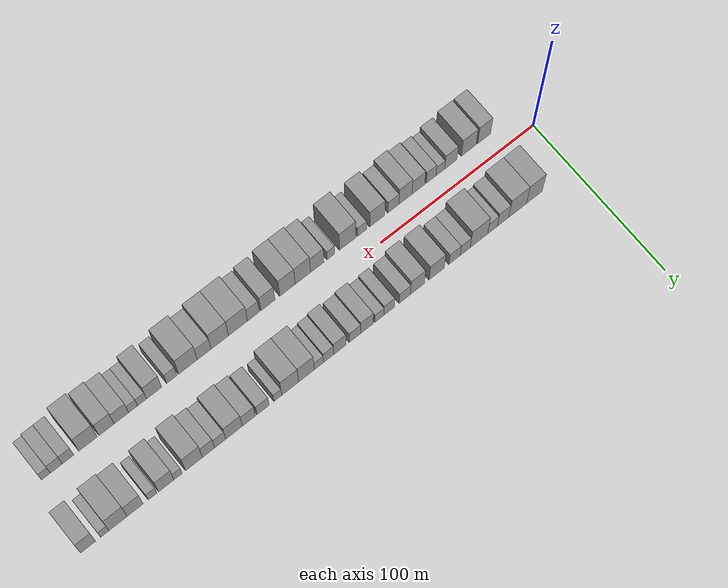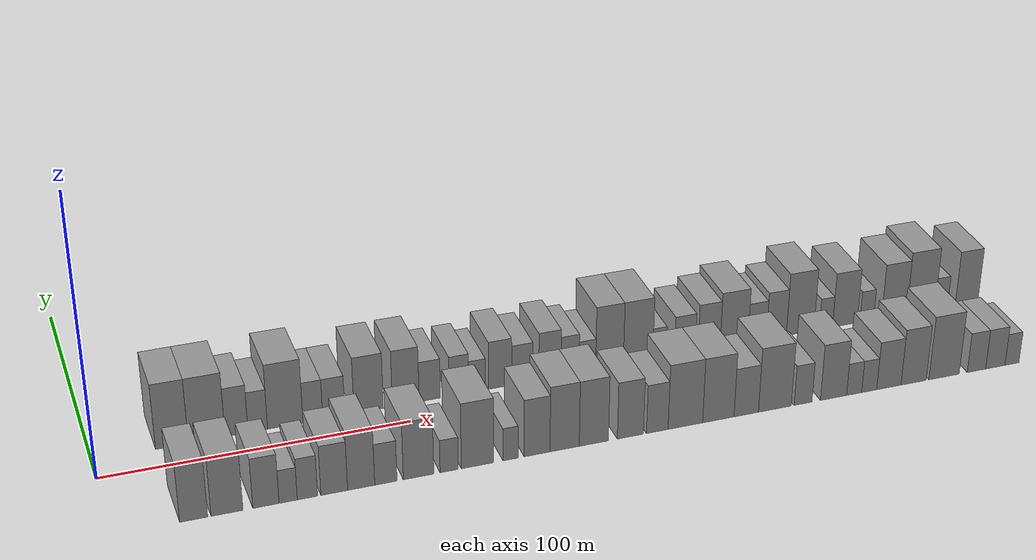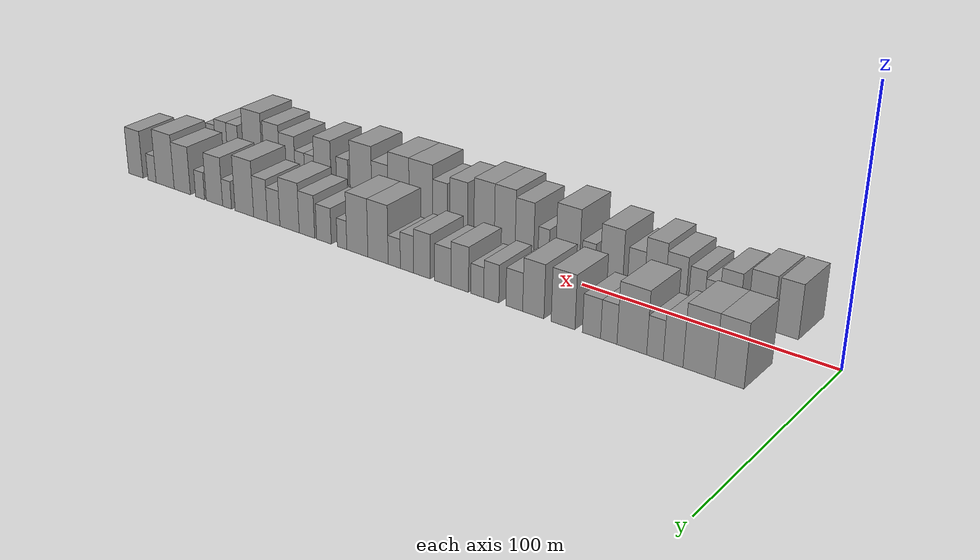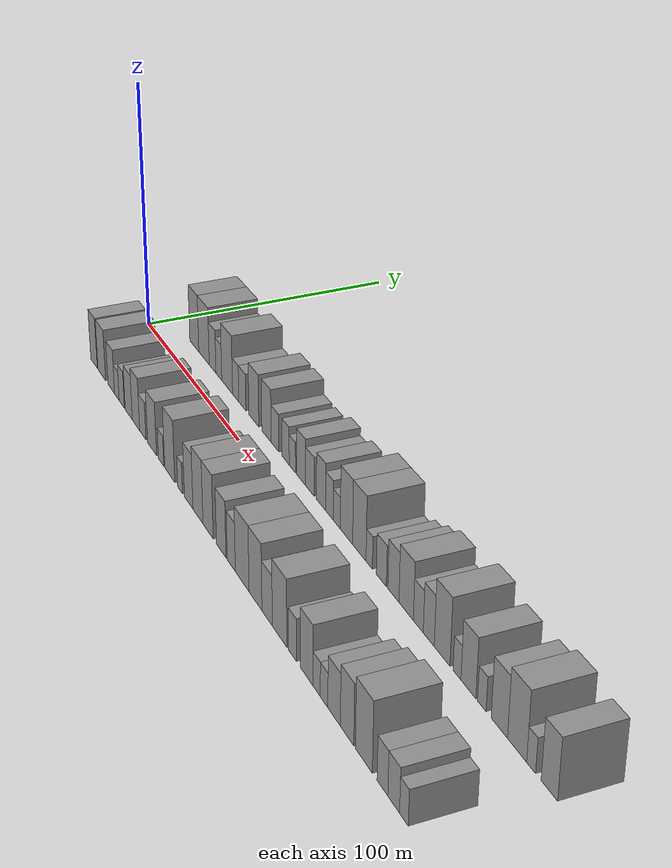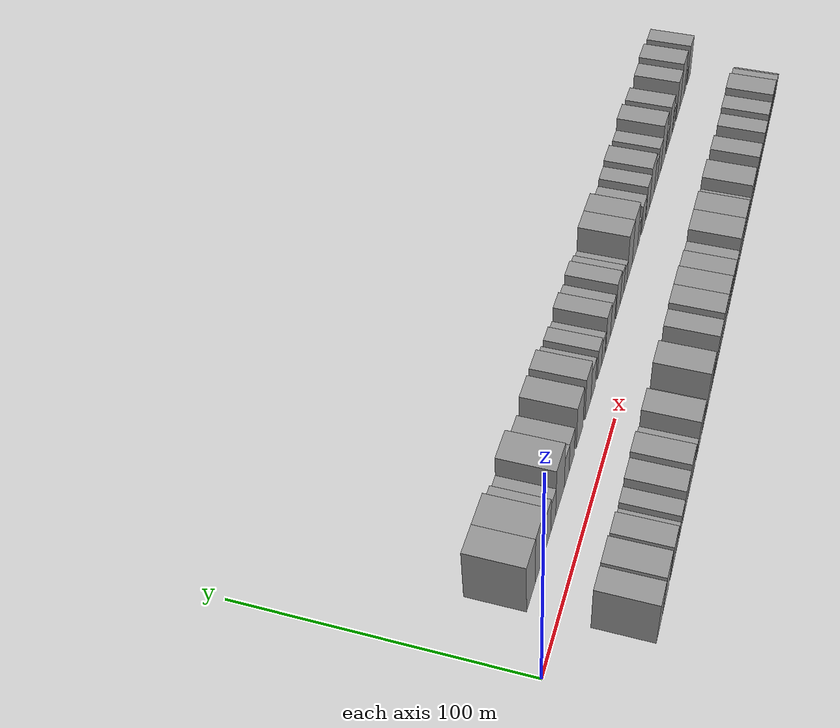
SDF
<sdf version="1.6">
 <world name="default">
  <scene>
   <sky><clouds><speed>12</speed></clouds></sky>
   <ambient>0.4 0.4 0.4 1</ambient>
   <background>0.7 0.7 0.7 1</background>
   <shadows>1</shadows>
  </scene>
  <gravity>0 0 -9.8066</gravity>
  <magnetic_field>6e-06 2.3e-05 -4.2e-05</magnetic_field>
  <physics default="0" name="default_physics" type="ode">
   <ode>
    <solver>
     <type>quick</type>
     <iters>10</iters>
     <sor>1.0</sor>
     <use_dynamic_moi_rescaling>0</use_dynamic_moi_rescaling>
    </solver>
    <constraints>
     <cfm>0</cfm>
     <erp>0.2</erp>
     <contact_max_correcting_vel>100</contact_max_correcting_vel>
     <contact_surface_layer>0.001</contact_surface_layer>
    </constraints>
   </ode>
   <max_step_size>0.004</max_step_size>
   <real_time_factor>1</real_time_factor>
   <real_time_update_rate>250</real_time_update_rate>
  </physics>
  <light name="sun" type="directional">
   <pose>0 0 10 0 0 0</pose>
   <diffuse>0.8 0.8 0.8 1</diffuse>
   <specular>0.2 0.2 0.2 1</specular>
   <attenuation>
    <range>1000</range>
    <constant>0.9</constant>
    <linear>0.01</linear>
    <quadratic>0.001</quadratic>
   </attenuation>
   <direction>-0.5 0.1 -0.9</direction>
  </light>
  <model name="building_1">
   <static>1</static>
   <pose>25.1903 20.0000 0 0.000000 0.000000 1.570796</pose>
   <link name="link">
    <pose>0 0 12.00 0 0 0</pose>
    <collision name="collision"><geometry><box><size>20.0000 10.3805 24.0000</size></box></geometry></collision>
    <visual name="visual">
     <cast_shadows>0</cast_shadows>
     <geometry><box><size>20.0000 10.3805 24.0000</size></box></geometry>
     <material>
      <script>
       <uri>model://grey_wall/materials/scripts</uri>
       <uri>model://grey_wall/materials/textures</uri>
       <name>vrc/grey_wall</name>
      </script>
     </material>
    </visual>
   </link>
  </model>
  <model name="building_2">
   <static>1</static>
   <pose>36.2420 20.0000 0 0.000000 0.000000 1.570796</pose>
   <link name="link">
    <pose>0 0 12.00 0 0 0</pose>
    <collision name="collision"><geometry><box><size>20.0000 11.7230 24.0000</size></box></geometry></collision>
    <visual name="visual">
     <cast_shadows>0</cast_shadows>
     <geometry><box><size>20.0000 11.7230 24.0000</size></box></geometry>
     <material>
      <script>
       <uri>model://grey_wall/materials/scripts</uri>
       <uri>model://grey_wall/materials/textures</uri>
       <name>vrc/grey_wall</name>
      </script>
     </material>
    </visual>
   </link>
  </model>
  <model name="building_3">
   <static>1</static>
   <pose>45.7903 20.0000 0 0.000000 0.000000 1.570796</pose>
   <link name="link">
    <pose>0 0 9.00 0 0 0</pose>
    <collision name="collision"><geometry><box><size>20.0000 7.3734 18.0000</size></box></geometry></collision>
    <visual name="visual">
     <cast_shadows>0</cast_shadows>
     <geometry><box><size>20.0000 7.3734 18.0000</size></box></geometry>
     <material>
      <script>
       <uri>model://grey_wall/materials/scripts</uri>
       <uri>model://grey_wall/materials/textures</uri>
       <name>vrc/grey_wall</name>
      </script>
     </material>
    </visual>
   </link>
  </model>
  <model name="building_4">
   <static>1</static>
   <pose>52.6299 20.0000 0 0.000000 0.000000 1.570796</pose>
   <link name="link">
    <pose>0 0 7.50 0 0 0</pose>
    <collision name="collision"><geometry><box><size>20.0000 6.3058 15.0000</size></box></geometry></collision>
    <visual name="visual">
     <cast_shadows>0</cast_shadows>
     <geometry><box><size>20.0000 6.3058 15.0000</size></box></geometry>
     <material>
      <script>
       <uri>model://grey_wall/materials/scripts</uri>
       <uri>model://grey_wall/materials/textures</uri>
       <name>vrc/grey_wall</name>
      </script>
     </material>
    </visual>
   </link>
  </model>
  <model name="building_5">
   <static>1</static>
   <pose>61.5337 20.0000 0 0.000000 0.000000 1.570796</pose>
   <link name="link">
    <pose>0 0 12.00 0 0 0</pose>
    <collision name="collision"><geometry><box><size>20.0000 11.5018 24.0000</size></box></geometry></collision>
    <visual name="visual">
     <cast_shadows>0</cast_shadows>
     <geometry><box><size>20.0000 11.5018 24.0000</size></box></geometry>
     <material>
      <script>
       <uri>model://grey_wall/materials/scripts</uri>
       <uri>model://grey_wall/materials/textures</uri>
       <name>vrc/grey_wall</name>
      </script>
     </material>
    </visual>
   </link>
  </model>
  <model name="building_6">
   <static>1</static>
   <pose>70.5123 20.0000 0 0.000000 0.000000 1.570796</pose>
   <link name="link">
    <pose>0 0 7.50 0 0 0</pose>
    <collision name="collision"><geometry><box><size>20.0000 6.4554 15.0000</size></box></geometry></collision>
    <visual name="visual">
     <cast_shadows>0</cast_shadows>
     <geometry><box><size>20.0000 6.4554 15.0000</size></box></geometry>
     <material>
      <script>
       <uri>model://grey_wall/materials/scripts</uri>
       <uri>model://grey_wall/materials/textures</uri>
       <name>vrc/grey_wall</name>
      </script>
     </material>
    </visual>
   </link>
  </model>
  <model name="building_7">
   <static>1</static>
   <pose>77.3786 20.0000 0 0.000000 0.000000 1.570796</pose>
   <link name="link">
    <pose>0 0 7.50 0 0 0</pose>
    <collision name="collision"><geometry><box><size>20.0000 7.2771 15.0000</size></box></geometry></collision>
    <visual name="visual">
     <cast_shadows>0</cast_shadows>
     <geometry><box><size>20.0000 7.2771 15.0000</size></box></geometry>
     <material>
      <script>
       <uri>model://grey_wall/materials/scripts</uri>
       <uri>model://grey_wall/materials/textures</uri>
       <name>vrc/grey_wall</name>
      </script>
     </material>
    </visual>
   </link>
  </model>
  <model name="building_8">
   <static>1</static>
   <pose>88.9025 20.0000 0 0.000000 0.000000 1.570796</pose>
   <link name="link">
    <pose>0 0 10.50 0 0 0</pose>
    <collision name="collision"><geometry><box><size>20.0000 9.7707 21.0000</size></box></geometry></collision>
    <visual name="visual">
     <cast_shadows>0</cast_shadows>
     <geometry><box><size>20.0000 9.7707 21.0000</size></box></geometry>
     <material>
      <script>
       <uri>model://grey_wall/materials/scripts</uri>
       <uri>model://grey_wall/materials/textures</uri>
       <name>vrc/grey_wall</name>
      </script>
     </material>
    </visual>
   </link>
  </model>
  <model name="building_9">
   <static>1</static>
   <pose>101.2735 20.0000 0 0.000000 0.000000 1.570796</pose>
   <link name="link">
    <pose>0 0 10.50 0 0 0</pose>
    <collision name="collision"><geometry><box><size>20.0000 8.9713 21.0000</size></box></geometry></collision>
    <visual name="visual">
     <cast_shadows>0</cast_shadows>
     <geometry><box><size>20.0000 8.9713 21.0000</size></box></geometry>
     <material>
      <script>
       <uri>model://grey_wall/materials/scripts</uri>
       <uri>model://grey_wall/materials/textures</uri>
       <name>vrc/grey_wall</name>
      </script>
     </material>
    </visual>
   </link>
  </model>
  <model name="building_10">
   <static>1</static>
   <pose>109.3576 20.0000 0 0.000000 0.000000 1.570796</pose>
   <link name="link">
    <pose>0 0 7.50 0 0 0</pose>
    <collision name="collision"><geometry><box><size>20.0000 7.1968 15.0000</size></box></geometry></collision>
    <visual name="visual">
     <cast_shadows>0</cast_shadows>
     <geometry><box><size>20.0000 7.1968 15.0000</size></box></geometry>
     <material>
      <script>
       <uri>model://grey_wall/materials/scripts</uri>
       <uri>model://grey_wall/materials/textures</uri>
       <name>vrc/grey_wall</name>
      </script>
     </material>
    </visual>
   </link>
  </model>
  <model name="building_11">
   <static>1</static>
   <pose>119.2578 20.0000 0 0.000000 0.000000 1.570796</pose>
   <link name="link">
    <pose>0 0 7.50 0 0 0</pose>
    <collision name="collision"><geometry><box><size>20.0000 6.6038 15.0000</size></box></geometry></collision>
    <visual name="visual">
     <cast_shadows>0</cast_shadows>
     <geometry><box><size>20.0000 6.6038 15.0000</size></box></geometry>
     <material>
      <script>
       <uri>model://grey_wall/materials/scripts</uri>
       <uri>model://grey_wall/materials/textures</uri>
       <name>vrc/grey_wall</name>
      </script>
     </material>
    </visual>
   </link>
  </model>
  <model name="building_12">
   <static>1</static>
   <pose>125.4372 20.0000 0 0.000000 0.000000 1.570796</pose>
   <link name="link">
    <pose>0 0 6.00 0 0 0</pose>
    <collision name="collision"><geometry><box><size>20.0000 5.7549 12.0000</size></box></geometry></collision>
    <visual name="visual">
     <cast_shadows>0</cast_shadows>
     <geometry><box><size>20.0000 5.7549 12.0000</size></box></geometry>
     <material>
      <script>
       <uri>model://grey_wall/materials/scripts</uri>
       <uri>model://grey_wall/materials/textures</uri>
       <name>vrc/grey_wall</name>
      </script>
     </material>
    </visual>
   </link>
  </model>
  <model name="building_13">
   <static>1</static>
   <pose>133.2861 20.0000 0 0.000000 0.000000 1.570796</pose>
   <link name="link">
    <pose>0 0 9.00 0 0 0</pose>
    <collision name="collision"><geometry><box><size>20.0000 7.9430 18.0000</size></box></geometry></collision>
    <visual name="visual">
     <cast_shadows>0</cast_shadows>
     <geometry><box><size>20.0000 7.9430 18.0000</size></box></geometry>
     <material>
      <script>
       <uri>model://grey_wall/materials/scripts</uri>
       <uri>model://grey_wall/materials/textures</uri>
       <name>vrc/grey_wall</name>
      </script>
     </material>
    </visual>
   </link>
  </model>
  <model name="building_14">
   <static>1</static>
   <pose>140.9305 20.0000 0 0.000000 0.000000 1.570796</pose>
   <link name="link">
    <pose>0 0 7.50 0 0 0</pose>
    <collision name="collision"><geometry><box><size>20.0000 7.3458 15.0000</size></box></geometry></collision>
    <visual name="visual">
     <cast_shadows>0</cast_shadows>
     <geometry><box><size>20.0000 7.3458 15.0000</size></box></geometry>
     <material>
      <script>
       <uri>model://grey_wall/materials/scripts</uri>
       <uri>model://grey_wall/materials/textures</uri>
       <name>vrc/grey_wall</name>
      </script>
     </material>
    </visual>
   </link>
  </model>
  <model name="building_15">
   <static>1</static>
   <pose>150.4862 20.0000 0 0.000000 0.000000 1.570796</pose>
   <link name="link">
    <pose>0 0 9.00 0 0 0</pose>
    <collision name="collision"><geometry><box><size>20.0000 7.7655 18.0000</size></box></geometry></collision>
    <visual name="visual">
     <cast_shadows>0</cast_shadows>
     <geometry><box><size>20.0000 7.7655 18.0000</size></box></geometry>
     <material>
      <script>
       <uri>model://grey_wall/materials/scripts</uri>
       <uri>model://grey_wall/materials/textures</uri>
       <name>vrc/grey_wall</name>
      </script>
     </material>
    </visual>
   </link>
  </model>
  <model name="building_16">
   <static>1</static>
   <pose>157.5032 20.0000 0 0.000000 0.000000 1.570796</pose>
   <link name="link">
    <pose>0 0 7.50 0 0 0</pose>
    <collision name="collision"><geometry><box><size>20.0000 6.2685 15.0000</size></box></geometry></collision>
    <visual name="visual">
     <cast_shadows>0</cast_shadows>
     <geometry><box><size>20.0000 6.2685 15.0000</size></box></geometry>
     <material>
      <script>
       <uri>model://grey_wall/materials/scripts</uri>
       <uri>model://grey_wall/materials/textures</uri>
       <name>vrc/grey_wall</name>
      </script>
     </material>
    </visual>
   </link>
  </model>
  <model name="building_17">
   <static>1</static>
   <pose>163.5478 20.0000 0 0.000000 0.000000 1.570796</pose>
   <link name="link">
    <pose>0 0 6.00 0 0 0</pose>
    <collision name="collision"><geometry><box><size>20.0000 5.8207 12.0000</size></box></geometry></collision>
    <visual name="visual">
     <cast_shadows>0</cast_shadows>
     <geometry><box><size>20.0000 5.8207 12.0000</size></box></geometry>
     <material>
      <script>
       <uri>model://grey_wall/materials/scripts</uri>
       <uri>model://grey_wall/materials/textures</uri>
       <name>vrc/grey_wall</name>
      </script>
     </material>
    </visual>
   </link>
  </model>
  <model name="building_18">
   <static>1</static>
   <pose>171.3626 20.0000 0 0.000000 0.000000 1.570796</pose>
   <link name="link">
    <pose>0 0 12.00 0 0 0</pose>
    <collision name="collision"><geometry><box><size>20.0000 9.8091 24.0000</size></box></geometry></collision>
    <visual name="visual">
     <cast_shadows>0</cast_shadows>
     <geometry><box><size>20.0000 9.8091 24.0000</size></box></geometry>
     <material>
      <script>
       <uri>model://grey_wall/materials/scripts</uri>
       <uri>model://grey_wall/materials/textures</uri>
       <name>vrc/grey_wall</name>
      </script>
     </material>
    </visual>
   </link>
  </model>
  <model name="building_19">
   <static>1</static>
   <pose>181.4754 20.0000 0 0.000000 0.000000 1.570796</pose>
   <link name="link">
    <pose>0 0 12.00 0 0 0</pose>
    <collision name="collision"><geometry><box><size>20.0000 10.4164 24.0000</size></box></geometry></collision>
    <visual name="visual">
     <cast_shadows>0</cast_shadows>
     <geometry><box><size>20.0000 10.4164 24.0000</size></box></geometry>
     <material>
      <script>
       <uri>model://grey_wall/materials/scripts</uri>
       <uri>model://grey_wall/materials/textures</uri>
       <name>vrc/grey_wall</name>
      </script>
     </material>
    </visual>
   </link>
  </model>
  <model name="building_20">
   <static>1</static>
   <pose>189.0903 20.0000 0 0.000000 0.000000 1.570796</pose>
   <link name="link">
    <pose>0 0 6.00 0 0 0</pose>
    <collision name="collision"><geometry><box><size>20.0000 4.8135 12.0000</size></box></geometry></collision>
    <visual name="visual">
     <cast_shadows>0</cast_shadows>
     <geometry><box><size>20.0000 4.8135 12.0000</size></box></geometry>
     <material>
      <script>
       <uri>model://grey_wall/materials/scripts</uri>
       <uri>model://grey_wall/materials/textures</uri>
       <name>vrc/grey_wall</name>
      </script>
     </material>
    </visual>
   </link>
  </model>
  <model name="building_21">
   <static>1</static>
   <pose>198.2277 20.0000 0 0.000000 0.000000 1.570796</pose>
   <link name="link">
    <pose>0 0 7.50 0 0 0</pose>
    <collision name="collision"><geometry><box><size>20.0000 7.4613 15.0000</size></box></geometry></collision>
    <visual name="visual">
     <cast_shadows>0</cast_shadows>
     <geometry><box><size>20.0000 7.4613 15.0000</size></box></geometry>
     <material>
      <script>
       <uri>model://grey_wall/materials/scripts</uri>
       <uri>model://grey_wall/materials/textures</uri>
       <name>vrc/grey_wall</name>
      </script>
     </material>
    </visual>
   </link>
  </model>
  <model name="building_22">
   <static>1</static>
   <pose>206.9759 20.0000 0 0.000000 0.000000 1.570796</pose>
   <link name="link">
    <pose>0 0 9.00 0 0 0</pose>
    <collision name="collision"><geometry><box><size>20.0000 8.0350 18.0000</size></box></geometry></collision>
    <visual name="visual">
     <cast_shadows>0</cast_shadows>
     <geometry><box><size>20.0000 8.0350 18.0000</size></box></geometry>
     <material>
      <script>
       <uri>model://grey_wall/materials/scripts</uri>
       <uri>model://grey_wall/materials/textures</uri>
       <name>vrc/grey_wall</name>
      </script>
     </material>
    </visual>
   </link>
  </model>
  <model name="building_23">
   <static>1</static>
   <pose>216.0809 20.0000 0 0.000000 0.000000 1.570796</pose>
   <link name="link">
    <pose>0 0 10.50 0 0 0</pose>
    <collision name="collision"><geometry><box><size>20.0000 10.1751 21.0000</size></box></geometry></collision>
    <visual name="visual">
     <cast_shadows>0</cast_shadows>
     <geometry><box><size>20.0000 10.1751 21.0000</size></box></geometry>
     <material>
      <script>
       <uri>model://grey_wall/materials/scripts</uri>
       <uri>model://grey_wall/materials/textures</uri>
       <name>vrc/grey_wall</name>
      </script>
     </material>
    </visual>
   </link>
  </model>
  <model name="building_24">
   <static>1</static>
   <pose>224.5500 20.0000 0 0.000000 0.000000 1.570796</pose>
   <link name="link">
    <pose>0 0 7.50 0 0 0</pose>
    <collision name="collision"><geometry><box><size>20.0000 6.7630 15.0000</size></box></geometry></collision>
    <visual name="visual">
     <cast_shadows>0</cast_shadows>
     <geometry><box><size>20.0000 6.7630 15.0000</size></box></geometry>
     <material>
      <script>
       <uri>model://grey_wall/materials/scripts</uri>
       <uri>model://grey_wall/materials/textures</uri>
       <name>vrc/grey_wall</name>
      </script>
     </material>
    </visual>
   </link>
  </model>
  <model name="building_25">
   <static>1</static>
   <pose>231.6264 20.0000 0 0.000000 0.000000 1.570796</pose>
   <link name="link">
    <pose>0 0 9.00 0 0 0</pose>
    <collision name="collision"><geometry><box><size>20.0000 7.3898 18.0000</size></box></geometry></collision>
    <visual name="visual">
     <cast_shadows>0</cast_shadows>
     <geometry><box><size>20.0000 7.3898 18.0000</size></box></geometry>
     <material>
      <script>
       <uri>model://grey_wall/materials/scripts</uri>
       <uri>model://grey_wall/materials/textures</uri>
       <name>vrc/grey_wall</name>
      </script>
     </material>
    </visual>
   </link>
  </model>
  <model name="building_26">
   <static>1</static>
   <pose>240.4442 20.0000 0 0.000000 0.000000 1.570796</pose>
   <link name="link">
    <pose>0 0 12.00 0 0 0</pose>
    <collision name="collision"><geometry><box><size>20.0000 10.2458 24.0000</size></box></geometry></collision>
    <visual name="visual">
     <cast_shadows>0</cast_shadows>
     <geometry><box><size>20.0000 10.2458 24.0000</size></box></geometry>
     <material>
      <script>
       <uri>model://grey_wall/materials/scripts</uri>
       <uri>model://grey_wall/materials/textures</uri>
       <name>vrc/grey_wall</name>
      </script>
     </material>
    </visual>
   </link>
  </model>
  <model name="building_27">
   <static>1</static>
   <pose>250.0642 20.0000 0 0.000000 0.000000 1.570796</pose>
   <link name="link">
    <pose>0 0 6.00 0 0 0</pose>
    <collision name="collision"><geometry><box><size>20.0000 4.9942 12.0000</size></box></geometry></collision>
    <visual name="visual">
     <cast_shadows>0</cast_shadows>
     <geometry><box><size>20.0000 4.9942 12.0000</size></box></geometry>
     <material>
      <script>
       <uri>model://grey_wall/materials/scripts</uri>
       <uri>model://grey_wall/materials/textures</uri>
       <name>vrc/grey_wall</name>
      </script>
     </material>
    </visual>
   </link>
  </model>
  <model name="building_28">
   <static>1</static>
   <pose>257.1927 20.0000 0 0.000000 0.000000 1.570796</pose>
   <link name="link">
    <pose>0 0 10.50 0 0 0</pose>
    <collision name="collision"><geometry><box><size>20.0000 9.2628 21.0000</size></box></geometry></collision>
    <visual name="visual">
     <cast_shadows>0</cast_shadows>
     <geometry><box><size>20.0000 9.2628 21.0000</size></box></geometry>
     <material>
      <script>
       <uri>model://grey_wall/materials/scripts</uri>
       <uri>model://grey_wall/materials/textures</uri>
       <name>vrc/grey_wall</name>
      </script>
     </material>
    </visual>
   </link>
  </model>
  <model name="building_29">
   <static>1</static>
   <pose>265.4251 20.0000 0 0.000000 0.000000 1.570796</pose>
   <link name="link">
    <pose>0 0 6.00 0 0 0</pose>
    <collision name="collision"><geometry><box><size>20.0000 5.2021 12.0000</size></box></geometry></collision>
    <visual name="visual">
     <cast_shadows>0</cast_shadows>
     <geometry><box><size>20.0000 5.2021 12.0000</size></box></geometry>
     <material>
      <script>
       <uri>model://grey_wall/materials/scripts</uri>
       <uri>model://grey_wall/materials/textures</uri>
       <name>vrc/grey_wall</name>
      </script>
     </material>
    </visual>
   </link>
  </model>
  <model name="building_30">
   <static>1</static>
   <pose>275.7884 20.0000 0 0.000000 0.000000 1.570796</pose>
   <link name="link">
    <pose>0 0 10.50 0 0 0</pose>
    <collision name="collision"><geometry><box><size>20.0000 9.5245 21.0000</size></box></geometry></collision>
    <visual name="visual">
     <cast_shadows>0</cast_shadows>
     <geometry><box><size>20.0000 9.5245 21.0000</size></box></geometry>
     <material>
      <script>
       <uri>model://grey_wall/materials/scripts</uri>
       <uri>model://grey_wall/materials/textures</uri>
       <name>vrc/grey_wall</name>
      </script>
     </material>
    </visual>
   </link>
  </model>
  <model name="building_31">
   <static>1</static>
   <pose>285.9684 20.0000 0 0.000000 0.000000 1.570796</pose>
   <link name="link">
    <pose>0 0 12.00 0 0 0</pose>
    <collision name="collision"><geometry><box><size>20.0000 10.8355 24.0000</size></box></geometry></collision>
    <visual name="visual">
     <cast_shadows>0</cast_shadows>
     <geometry><box><size>20.0000 10.8355 24.0000</size></box></geometry>
     <material>
      <script>
       <uri>model://grey_wall/materials/scripts</uri>
       <uri>model://grey_wall/materials/textures</uri>
       <name>vrc/grey_wall</name>
      </script>
     </material>
    </visual>
   </link>
  </model>
  <model name="building_32">
   <static>1</static>
   <pose>293.8585 20.0000 0 0.000000 0.000000 1.570796</pose>
   <link name="link">
    <pose>0 0 6.00 0 0 0</pose>
    <collision name="collision"><geometry><box><size>20.0000 4.9446 12.0000</size></box></geometry></collision>
    <visual name="visual">
     <cast_shadows>0</cast_shadows>
     <geometry><box><size>20.0000 4.9446 12.0000</size></box></geometry>
     <material>
      <script>
       <uri>model://grey_wall/materials/scripts</uri>
       <uri>model://grey_wall/materials/textures</uri>
       <name>vrc/grey_wall</name>
      </script>
     </material>
    </visual>
   </link>
  </model>
  <model name="building_33">
   <static>1</static>
   <pose>303.7299 20.0000 0 0.000000 0.000000 1.570796</pose>
   <link name="link">
    <pose>0 0 10.50 0 0 0</pose>
    <collision name="collision"><geometry><box><size>20.0000 8.7983 21.0000</size></box></geometry></collision>
    <visual name="visual">
     <cast_shadows>0</cast_shadows>
     <geometry><box><size>20.0000 8.7983 21.0000</size></box></geometry>
     <material>
      <script>
       <uri>model://grey_wall/materials/scripts</uri>
       <uri>model://grey_wall/materials/textures</uri>
       <name>vrc/grey_wall</name>
      </script>
     </material>
    </visual>
   </link>
  </model>
  <model name="building_34">
   <static>1</static>
   <pose>24.2433 -20.0000 0 0.000000 0.000000 1.570796</pose>
   <link name="link">
    <pose>0 0 10.50 0 0 0</pose>
    <collision name="collision"><geometry><box><size>20.0000 8.4867 21.0000</size></box></geometry></collision>
    <visual name="visual">
     <cast_shadows>0</cast_shadows>
     <geometry><box><size>20.0000 8.4867 21.0000</size></box></geometry>
     <material>
      <script>
       <uri>model://grey_wall/materials/scripts</uri>
       <uri>model://grey_wall/materials/textures</uri>
       <name>vrc/grey_wall</name>
      </script>
     </material>
    </visual>
   </link>
  </model>
  <model name="building_35">
   <static>1</static>
   <pose>34.3473 -20.0000 0 0.000000 0.000000 1.570796</pose>
   <link name="link">
    <pose>0 0 10.50 0 0 0</pose>
    <collision name="collision"><geometry><box><size>20.0000 9.7212 21.0000</size></box></geometry></collision>
    <visual name="visual">
     <cast_shadows>0</cast_shadows>
     <geometry><box><size>20.0000 9.7212 21.0000</size></box></geometry>
     <material>
      <script>
       <uri>model://grey_wall/materials/scripts</uri>
       <uri>model://grey_wall/materials/textures</uri>
       <name>vrc/grey_wall</name>
      </script>
     </material>
    </visual>
   </link>
  </model>
  <model name="building_36">
   <static>1</static>
   <pose>46.2433 -20.0000 0 0.000000 0.000000 1.570796</pose>
   <link name="link">
    <pose>0 0 9.00 0 0 0</pose>
    <collision name="collision"><geometry><box><size>20.0000 8.0709 18.0000</size></box></geometry></collision>
    <visual name="visual">
     <cast_shadows>0</cast_shadows>
     <geometry><box><size>20.0000 8.0709 18.0000</size></box></geometry>
     <material>
      <script>
       <uri>model://grey_wall/materials/scripts</uri>
       <uri>model://grey_wall/materials/textures</uri>
       <name>vrc/grey_wall</name>
      </script>
     </material>
    </visual>
   </link>
  </model>
  <model name="building_37">
   <static>1</static>
   <pose>53.0917 -20.0000 0 0.000000 0.000000 1.570796</pose>
   <link name="link">
    <pose>0 0 6.00 0 0 0</pose>
    <collision name="collision"><geometry><box><size>20.0000 5.6259 12.0000</size></box></geometry></collision>
    <visual name="visual">
     <cast_shadows>0</cast_shadows>
     <geometry><box><size>20.0000 5.6259 12.0000</size></box></geometry>
     <material>
      <script>
       <uri>model://grey_wall/materials/scripts</uri>
       <uri>model://grey_wall/materials/textures</uri>
       <name>vrc/grey_wall</name>
      </script>
     </material>
    </visual>
   </link>
  </model>
  <model name="building_38">
   <static>1</static>
   <pose>59.0656 -20.0000 0 0.000000 0.000000 1.570796</pose>
   <link name="link">
    <pose>0 0 7.50 0 0 0</pose>
    <collision name="collision"><geometry><box><size>20.0000 6.3218 15.0000</size></box></geometry></collision>
    <visual name="visual">
     <cast_shadows>0</cast_shadows>
     <geometry><box><size>20.0000 6.3218 15.0000</size></box></geometry>
     <material>
      <script>
       <uri>model://grey_wall/materials/scripts</uri>
       <uri>model://grey_wall/materials/textures</uri>
       <name>vrc/grey_wall</name>
      </script>
     </material>
    </visual>
   </link>
  </model>
  <model name="building_39">
   <static>1</static>
   <pose>67.4088 -20.0000 0 0.000000 0.000000 1.570796</pose>
   <link name="link">
    <pose>0 0 9.00 0 0 0</pose>
    <collision name="collision"><geometry><box><size>20.0000 8.3646 18.0000</size></box></geometry></collision>
    <visual name="visual">
     <cast_shadows>0</cast_shadows>
     <geometry><box><size>20.0000 8.3646 18.0000</size></box></geometry>
     <material>
      <script>
       <uri>model://grey_wall/materials/scripts</uri>
       <uri>model://grey_wall/materials/textures</uri>
       <name>vrc/grey_wall</name>
      </script>
     </material>
    </visual>
   </link>
  </model>
  <model name="building_40">
   <static>1</static>
   <pose>75.8576 -20.0000 0 0.000000 0.000000 1.570796</pose>
   <link name="link">
    <pose>0 0 10.50 0 0 0</pose>
    <collision name="collision"><geometry><box><size>20.0000 8.5329 21.0000</size></box></geometry></collision>
    <visual name="visual">
     <cast_shadows>0</cast_shadows>
     <geometry><box><size>20.0000 8.5329 21.0000</size></box></geometry>
     <material>
      <script>
       <uri>model://grey_wall/materials/scripts</uri>
       <uri>model://grey_wall/materials/textures</uri>
       <name>vrc/grey_wall</name>
      </script>
     </material>
    </visual>
   </link>
  </model>
  <model name="building_41">
   <static>1</static>
   <pose>83.6474 -20.0000 0 0.000000 0.000000 1.570796</pose>
   <link name="link">
    <pose>0 0 7.50 0 0 0</pose>
    <collision name="collision"><geometry><box><size>20.0000 7.0468 15.0000</size></box></geometry></collision>
    <visual name="visual">
     <cast_shadows>0</cast_shadows>
     <geometry><box><size>20.0000 7.0468 15.0000</size></box></geometry>
     <material>
      <script>
       <uri>model://grey_wall/materials/scripts</uri>
       <uri>model://grey_wall/materials/textures</uri>
       <name>vrc/grey_wall</name>
      </script>
     </material>
    </visual>
   </link>
  </model>
  <model name="building_42">
   <static>1</static>
   <pose>94.0428 -20.0000 0 0.000000 0.000000 1.570796</pose>
   <link name="link">
    <pose>0 0 10.50 0 0 0</pose>
    <collision name="collision"><geometry><box><size>20.0000 9.7439 21.0000</size></box></geometry></collision>
    <visual name="visual">
     <cast_shadows>0</cast_shadows>
     <geometry><box><size>20.0000 9.7439 21.0000</size></box></geometry>
     <material>
      <script>
       <uri>model://grey_wall/materials/scripts</uri>
       <uri>model://grey_wall/materials/textures</uri>
       <name>vrc/grey_wall</name>
      </script>
     </material>
    </visual>
   </link>
  </model>
  <model name="building_43">
   <static>1</static>
   <pose>103.8439 -20.0000 0 0.000000 0.000000 1.570796</pose>
   <link name="link">
    <pose>0 0 6.00 0 0 0</pose>
    <collision name="collision"><geometry><box><size>20.0000 5.8583 12.0000</size></box></geometry></collision>
    <visual name="visual">
     <cast_shadows>0</cast_shadows>
     <geometry><box><size>20.0000 5.8583 12.0000</size></box></geometry>
     <material>
      <script>
       <uri>model://grey_wall/materials/scripts</uri>
       <uri>model://grey_wall/materials/textures</uri>
       <name>vrc/grey_wall</name>
      </script>
     </material>
    </visual>
   </link>
  </model>
  <model name="building_44">
   <static>1</static>
   <pose>113.0337 -20.0000 0 0.000000 0.000000 1.570796</pose>
   <link name="link">
    <pose>0 0 12.00 0 0 0</pose>
    <collision name="collision"><geometry><box><size>20.0000 10.5213 24.0000</size></box></geometry></collision>
    <visual name="visual">
     <cast_shadows>0</cast_shadows>
     <geometry><box><size>20.0000 10.5213 24.0000</size></box></geometry>
     <material>
      <script>
       <uri>model://grey_wall/materials/scripts</uri>
       <uri>model://grey_wall/materials/textures</uri>
       <name>vrc/grey_wall</name>
      </script>
     </material>
    </visual>
   </link>
  </model>
  <model name="building_45">
   <static>1</static>
   <pose>123.7558 -20.0000 0 0.000000 0.000000 1.570796</pose>
   <link name="link">
    <pose>0 0 6.00 0 0 0</pose>
    <collision name="collision"><geometry><box><size>20.0000 4.9229 12.0000</size></box></geometry></collision>
    <visual name="visual">
     <cast_shadows>0</cast_shadows>
     <geometry><box><size>20.0000 4.9229 12.0000</size></box></geometry>
     <material>
      <script>
       <uri>model://grey_wall/materials/scripts</uri>
       <uri>model://grey_wall/materials/textures</uri>
       <name>vrc/grey_wall</name>
      </script>
     </material>
    </visual>
   </link>
  </model>
  <model name="building_46">
   <static>1</static>
   <pose>132.4756 -20.0000 0 0.000000 0.000000 1.570796</pose>
   <link name="link">
    <pose>0 0 10.50 0 0 0</pose>
    <collision name="collision"><geometry><box><size>20.0000 8.5165 21.0000</size></box></geometry></collision>
    <visual name="visual">
     <cast_shadows>0</cast_shadows>
     <geometry><box><size>20.0000 8.5165 21.0000</size></box></geometry>
     <material>
      <script>
       <uri>model://grey_wall/materials/scripts</uri>
       <uri>model://grey_wall/materials/textures</uri>
       <name>vrc/grey_wall</name>
      </script>
     </material>
    </visual>
   </link>
  </model>
  <model name="building_47">
   <static>1</static>
   <pose>141.5916 -20.0000 0 0.000000 0.000000 1.570796</pose>
   <link name="link">
    <pose>0 0 12.00 0 0 0</pose>
    <collision name="collision"><geometry><box><size>20.0000 9.7156 24.0000</size></box></geometry></collision>
    <visual name="visual">
     <cast_shadows>0</cast_shadows>
     <geometry><box><size>20.0000 9.7156 24.0000</size></box></geometry>
     <material>
      <script>
       <uri>model://grey_wall/materials/scripts</uri>
       <uri>model://grey_wall/materials/textures</uri>
       <name>vrc/grey_wall</name>
      </script>
     </material>
    </visual>
   </link>
  </model>
  <model name="building_48">
   <static>1</static>
   <pose>151.3128 -20.0000 0 0.000000 0.000000 1.570796</pose>
   <link name="link">
    <pose>0 0 12.00 0 0 0</pose>
    <collision name="collision"><geometry><box><size>20.0000 9.7269 24.0000</size></box></geometry></collision>
    <visual name="visual">
     <cast_shadows>0</cast_shadows>
     <geometry><box><size>20.0000 9.7269 24.0000</size></box></geometry>
     <material>
      <script>
       <uri>model://grey_wall/materials/scripts</uri>
       <uri>model://grey_wall/materials/textures</uri>
       <name>vrc/grey_wall</name>
      </script>
     </material>
    </visual>
   </link>
  </model>
  <model name="building_49">
   <static>1</static>
   <pose>163.5768 -20.0000 0 0.000000 0.000000 1.570796</pose>
   <link name="link">
    <pose>0 0 10.50 0 0 0</pose>
    <collision name="collision"><geometry><box><size>20.0000 8.8010 21.0000</size></box></geometry></collision>
    <visual name="visual">
     <cast_shadows>0</cast_shadows>
     <geometry><box><size>20.0000 8.8010 21.0000</size></box></geometry>
     <material>
      <script>
       <uri>model://grey_wall/materials/scripts</uri>
       <uri>model://grey_wall/materials/textures</uri>
       <name>vrc/grey_wall</name>
      </script>
     </material>
    </visual>
   </link>
  </model>
  <model name="building_50">
   <static>1</static>
   <pose>172.6475 -20.0000 0 0.000000 0.000000 1.570796</pose>
   <link name="link">
    <pose>0 0 9.00 0 0 0</pose>
    <collision name="collision"><geometry><box><size>20.0000 7.3405 18.0000</size></box></geometry></collision>
    <visual name="visual">
     <cast_shadows>0</cast_shadows>
     <geometry><box><size>20.0000 7.3405 18.0000</size></box></geometry>
     <material>
      <script>
       <uri>model://grey_wall/materials/scripts</uri>
       <uri>model://grey_wall/materials/textures</uri>
       <name>vrc/grey_wall</name>
      </script>
     </material>
    </visual>
   </link>
  </model>
  <model name="building_51">
   <static>1</static>
   <pose>182.2365 -20.0000 0 0.000000 0.000000 1.570796</pose>
   <link name="link">
    <pose>0 0 12.00 0 0 0</pose>
    <collision name="collision"><geometry><box><size>20.0000 11.8375 24.0000</size></box></geometry></collision>
    <visual name="visual">
     <cast_shadows>0</cast_shadows>
     <geometry><box><size>20.0000 11.8375 24.0000</size></box></geometry>
     <material>
      <script>
       <uri>model://grey_wall/materials/scripts</uri>
       <uri>model://grey_wall/materials/textures</uri>
       <name>vrc/grey_wall</name>
      </script>
     </material>
    </visual>
   </link>
  </model>
  <model name="building_52">
   <static>1</static>
   <pose>193.5745 -20.0000 0 0.000000 0.000000 1.570796</pose>
   <link name="link">
    <pose>0 0 12.00 0 0 0</pose>
    <collision name="collision"><geometry><box><size>20.0000 10.8384 24.0000</size></box></geometry></collision>
    <visual name="visual">
     <cast_shadows>0</cast_shadows>
     <geometry><box><size>20.0000 10.8384 24.0000</size></box></geometry>
     <material>
      <script>
       <uri>model://grey_wall/materials/scripts</uri>
       <uri>model://grey_wall/materials/textures</uri>
       <name>vrc/grey_wall</name>
      </script>
     </material>
    </visual>
   </link>
  </model>
  <model name="building_53">
   <static>1</static>
   <pose>203.2477 -20.0000 0 0.000000 0.000000 1.570796</pose>
   <link name="link">
    <pose>0 0 9.00 0 0 0</pose>
    <collision name="collision"><geometry><box><size>20.0000 8.5080 18.0000</size></box></geometry></collision>
    <visual name="visual">
     <cast_shadows>0</cast_shadows>
     <geometry><box><size>20.0000 8.5080 18.0000</size></box></geometry>
     <material>
      <script>
       <uri>model://grey_wall/materials/scripts</uri>
       <uri>model://grey_wall/materials/textures</uri>
       <name>vrc/grey_wall</name>
      </script>
     </material>
    </visual>
   </link>
  </model>
  <model name="building_54">
   <static>1</static>
   <pose>213.2515 -20.0000 0 0.000000 0.000000 1.570796</pose>
   <link name="link">
    <pose>0 0 12.00 0 0 0</pose>
    <collision name="collision"><geometry><box><size>20.0000 11.4995 24.0000</size></box></geometry></collision>
    <visual name="visual">
     <cast_shadows>0</cast_shadows>
     <geometry><box><size>20.0000 11.4995 24.0000</size></box></geometry>
     <material>
      <script>
       <uri>model://grey_wall/materials/scripts</uri>
       <uri>model://grey_wall/materials/textures</uri>
       <name>vrc/grey_wall</name>
      </script>
     </material>
    </visual>
   </link>
  </model>
  <model name="building_55">
   <static>1</static>
   <pose>223.1632 -20.0000 0 0.000000 0.000000 1.570796</pose>
   <link name="link">
    <pose>0 0 7.50 0 0 0</pose>
    <collision name="collision"><geometry><box><size>20.0000 6.3238 15.0000</size></box></geometry></collision>
    <visual name="visual">
     <cast_shadows>0</cast_shadows>
     <geometry><box><size>20.0000 6.3238 15.0000</size></box></geometry>
     <material>
      <script>
       <uri>model://grey_wall/materials/scripts</uri>
       <uri>model://grey_wall/materials/textures</uri>
       <name>vrc/grey_wall</name>
      </script>
     </material>
    </visual>
   </link>
  </model>
  <model name="building_56">
   <static>1</static>
   <pose>233.9809 -20.0000 0 0.000000 0.000000 1.570796</pose>
   <link name="link">
    <pose>0 0 10.50 0 0 0</pose>
    <collision name="collision"><geometry><box><size>20.0000 9.3117 21.0000</size></box></geometry></collision>
    <visual name="visual">
     <cast_shadows>0</cast_shadows>
     <geometry><box><size>20.0000 9.3117 21.0000</size></box></geometry>
     <material>
      <script>
       <uri>model://grey_wall/materials/scripts</uri>
       <uri>model://grey_wall/materials/textures</uri>
       <name>vrc/grey_wall</name>
      </script>
     </material>
    </visual>
   </link>
  </model>
  <model name="building_57">
   <static>1</static>
   <pose>241.3429 -20.0000 0 0.000000 0.000000 1.570796</pose>
   <link name="link">
    <pose>0 0 6.00 0 0 0</pose>
    <collision name="collision"><geometry><box><size>20.0000 5.4123 12.0000</size></box></geometry></collision>
    <visual name="visual">
     <cast_shadows>0</cast_shadows>
     <geometry><box><size>20.0000 5.4123 12.0000</size></box></geometry>
     <material>
      <script>
       <uri>model://grey_wall/materials/scripts</uri>
       <uri>model://grey_wall/materials/textures</uri>
       <name>vrc/grey_wall</name>
      </script>
     </material>
    </visual>
   </link>
  </model>
  <model name="building_58">
   <static>1</static>
   <pose>246.7455 -20.0000 0 0.000000 0.000000 1.570796</pose>
   <link name="link">
    <pose>0 0 6.00 0 0 0</pose>
    <collision name="collision"><geometry><box><size>20.0000 5.3928 12.0000</size></box></geometry></collision>
    <visual name="visual">
     <cast_shadows>0</cast_shadows>
     <geometry><box><size>20.0000 5.3928 12.0000</size></box></geometry>
     <material>
      <script>
       <uri>model://grey_wall/materials/scripts</uri>
       <uri>model://grey_wall/materials/textures</uri>
       <name>vrc/grey_wall</name>
      </script>
     </material>
    </visual>
   </link>
  </model>
  <model name="building_59">
   <static>1</static>
   <pose>253.8330 -20.0000 0 0.000000 0.000000 1.570796</pose>
   <link name="link">
    <pose>0 0 9.00 0 0 0</pose>
    <collision name="collision"><geometry><box><size>20.0000 8.7822 18.0000</size></box></geometry></collision>
    <visual name="visual">
     <cast_shadows>0</cast_shadows>
     <geometry><box><size>20.0000 8.7822 18.0000</size></box></geometry>
     <material>
      <script>
       <uri>model://grey_wall/materials/scripts</uri>
       <uri>model://grey_wall/materials/textures</uri>
       <name>vrc/grey_wall</name>
      </script>
     </material>
    </visual>
   </link>
  </model>
  <model name="building_60">
   <static>1</static>
   <pose>262.8031 -20.0000 0 0.000000 0.000000 1.570796</pose>
   <link name="link">
    <pose>0 0 10.50 0 0 0</pose>
    <collision name="collision"><geometry><box><size>20.0000 9.1580 21.0000</size></box></geometry></collision>
    <visual name="visual">
     <cast_shadows>0</cast_shadows>
     <geometry><box><size>20.0000 9.1580 21.0000</size></box></geometry>
     <material>
      <script>
       <uri>model://grey_wall/materials/scripts</uri>
       <uri>model://grey_wall/materials/textures</uri>
       <name>vrc/grey_wall</name>
      </script>
     </material>
    </visual>
   </link>
  </model>
  <model name="building_61">
   <static>1</static>
   <pose>273.9251 -20.0000 0 0.000000 0.000000 1.570796</pose>
   <link name="link">
    <pose>0 0 12.00 0 0 0</pose>
    <collision name="collision"><geometry><box><size>20.0000 11.0862 24.0000</size></box></geometry></collision>
    <visual name="visual">
     <cast_shadows>0</cast_shadows>
     <geometry><box><size>20.0000 11.0862 24.0000</size></box></geometry>
     <material>
      <script>
       <uri>model://grey_wall/materials/scripts</uri>
       <uri>model://grey_wall/materials/textures</uri>
       <name>vrc/grey_wall</name>
      </script>
     </material>
    </visual>
   </link>
  </model>
  <model name="building_62">
   <static>1</static>
   <pose>285.8710 -20.0000 0 0.000000 0.000000 1.570796</pose>
   <link name="link">
    <pose>0 0 7.50 0 0 0</pose>
    <collision name="collision"><geometry><box><size>20.0000 6.8055 15.0000</size></box></geometry></collision>
    <visual name="visual">
     <cast_shadows>0</cast_shadows>
     <geometry><box><size>20.0000 6.8055 15.0000</size></box></geometry>
     <material>
      <script>
       <uri>model://grey_wall/materials/scripts</uri>
       <uri>model://grey_wall/materials/textures</uri>
       <name>vrc/grey_wall</name>
      </script>
     </material>
    </visual>
   </link>
  </model>
  <model name="building_63">
   <static>1</static>
   <pose>292.8623 -20.0000 0 0.000000 0.000000 1.570796</pose>
   <link name="link">
    <pose>0 0 7.50 0 0 0</pose>
    <collision name="collision"><geometry><box><size>20.0000 7.1772 15.0000</size></box></geometry></collision>
    <visual name="visual">
     <cast_shadows>0</cast_shadows>
     <geometry><box><size>20.0000 7.1772 15.0000</size></box></geometry>
     <material>
      <script>
       <uri>model://grey_wall/materials/scripts</uri>
       <uri>model://grey_wall/materials/textures</uri>
       <name>vrc/grey_wall</name>
      </script>
     </material>
    </visual>
   </link>
  </model>
  <model name="building_64">
   <static>1</static>
   <pose>299.0673 -20.0000 0 0.000000 0.000000 1.570796</pose>
   <link name="link">
    <pose>0 0 6.00 0 0 0</pose>
    <collision name="collision"><geometry><box><size>20.0000 5.2330 12.0000</size></box></geometry></collision>
    <visual name="visual">
     <cast_shadows>0</cast_shadows>
     <geometry><box><size>20.0000 5.2330 12.0000</size></box></geometry>
     <material>
      <script>
       <uri>model://grey_wall/materials/scripts</uri>
       <uri>model://grey_wall/materials/textures</uri>
       <name>vrc/grey_wall</name>
      </script>
     </material>
    </visual>
   </link>
  </model>
 </world>
</sdf>
